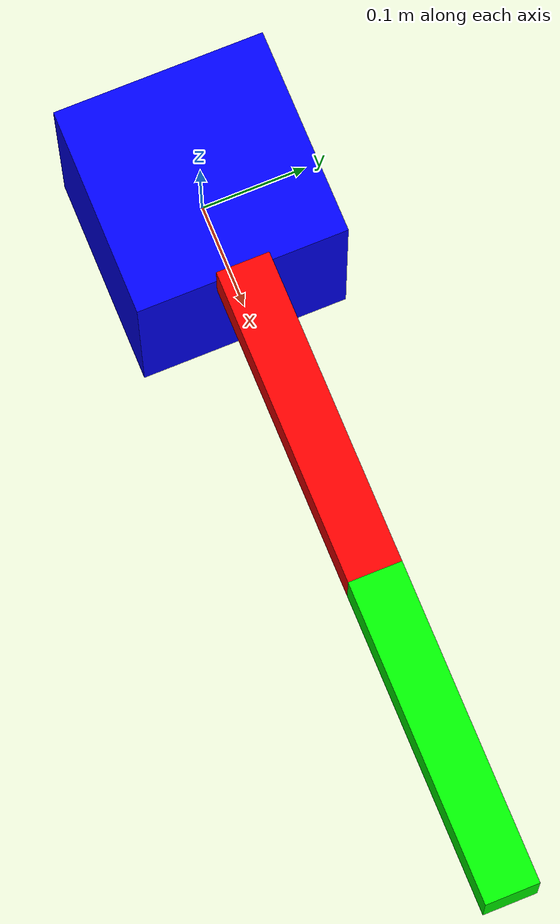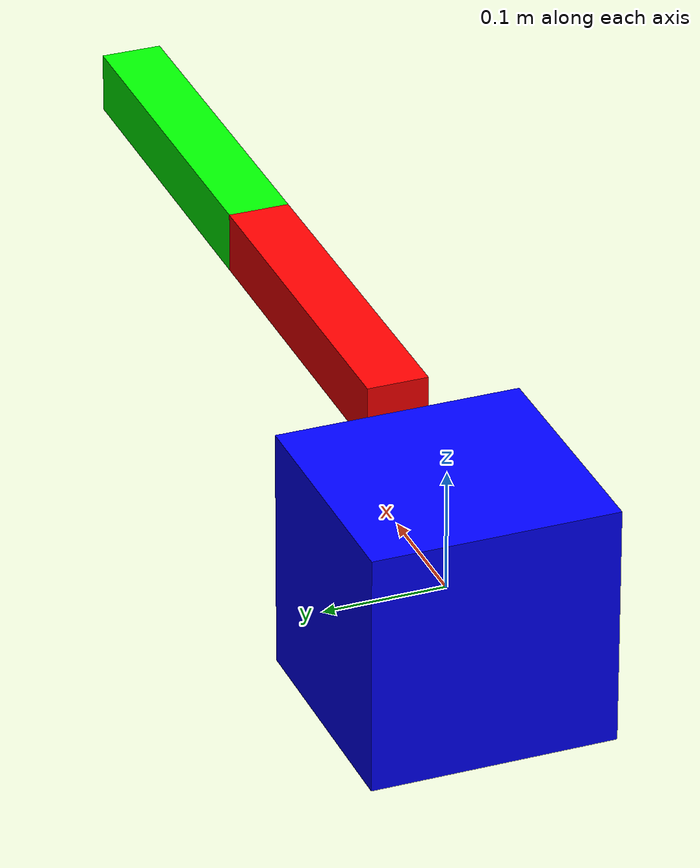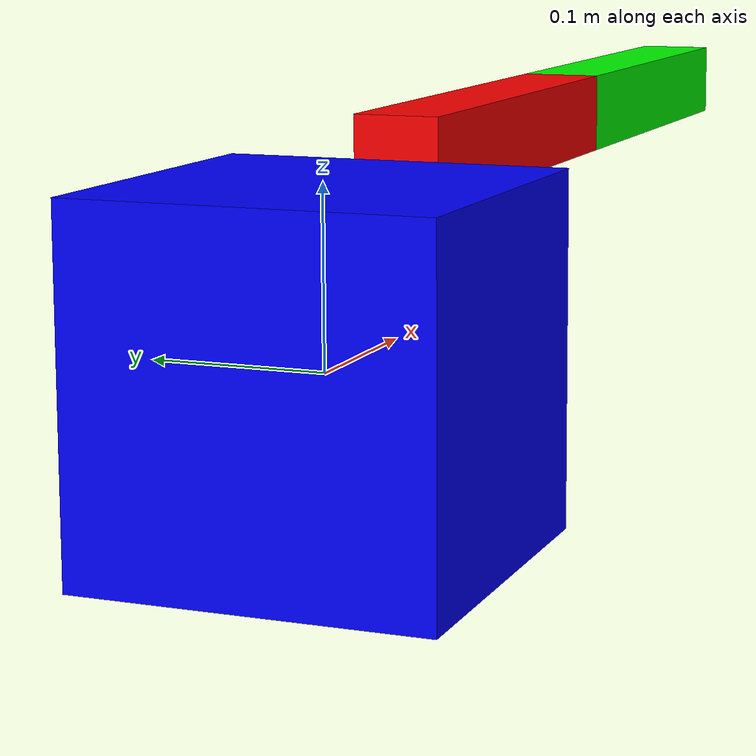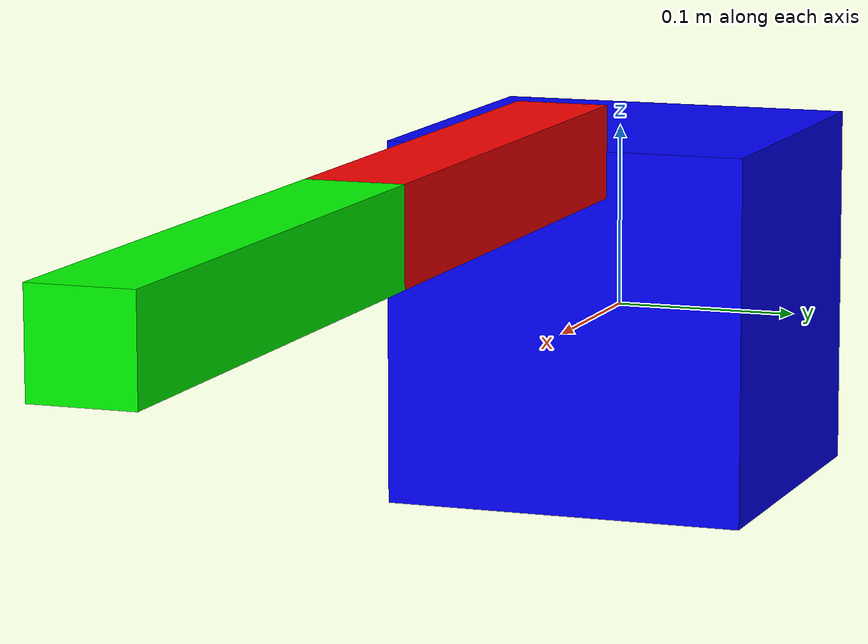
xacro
<?xml version="1.0"?>
<robot name="brachiograph_2dof">

  <!-- Base cúbica -->
  <link name="base_link">
    <visual>
      <geometry>
        <box size="0.2 0.2 0.2"/>
      </geometry>
      <material name="blue">
        <color rgba="0 0 1 1"/>
      </material>
    </visual>
    <collision>
      <geometry>
        <box size="0.2 0.2 0.2"/>
      </geometry>
    </collision>
    <inertial>
      <mass value="1.0"/>
      <inertia ixx="0.007" ixy="0" ixz="0" iyy="0.007" iyz="0" izz="0.007"/>
    </inertial>
  </link>

  <!-- Primer eslabón (prisma rectangular) -->
  <link name="link1">
    <visual>
      <origin xyz="0.15 0 0" rpy="0 0 0"/>
      <geometry>
        <box size="0.3 0.05 0.05"/>
      </geometry>
      <material name="red">
        <color rgba="1 0 0 1"/>
      </material>
    </visual>
    <collision>
      <origin xyz="0.15 0 0" rpy="0 0 0"/>
      <geometry>
        <box size="0.3 0.05 0.05"/>
      </geometry>
    </collision>
    <inertial>
      <origin xyz="0.15 0 0" rpy="0 0 0"/>
      <mass value="0.5"/>
      <inertia ixx="0.001" ixy="0" ixz="0" iyy="0.004" iyz="0" izz="0.004"/>
    </inertial>
  </link>

  <!-- Junta revoluta: Base al primer eslabón -->
  <joint name="shoulder_joint" type="revolute">
    <parent link="base_link"/>
    <child link="link1"/>
    <origin xyz="0.1 0 0.1" rpy="0 0 0"/>
    <axis xyz="0 0 1"/>
    <limit effort="10" velocity="2" lower="-3.14159" upper="3.14159"/>
    <dynamics damping="0.1" friction="0.05"/>
  </joint>

  <!-- Segundo eslabón (prisma rectangular, misma longitud) -->
  <link name="link2">
    <visual>
      <origin xyz="0.15 0 0" rpy="0 0 0"/>
      <geometry>
        <box size="0.3 0.05 0.05"/>
      </geometry>
      <material name="green">
        <color rgba="0 1 0 1"/>
      </material>
    </visual>
    <collision>
      <origin xyz="0.15 0 0" rpy="0 0 0"/>
      <geometry>
        <box size="0.3 0.05 0.05"/>
      </geometry>
    </collision>
    <inertial>
      <origin xyz="0.15 0 0" rpy="0 0 0"/>
      <mass value="0.5"/>
      <inertia ixx="0.001" ixy="0" ixz="0" iyy="0.004" iyz="0" izz="0.004"/>
    </inertial>
  </link>

  <!-- Junta revoluta: Primer eslabón al segundo eslabón -->
  <joint name="elbow_joint" type="revolute">
    <parent link="link1"/>
    <child link="link2"/>
    <origin xyz="0.3 0 0" rpy="0 0 0"/>
    <axis xyz="0 0 1"/>
    <limit effort="10" velocity="2" lower="-3.14159" upper="3.14159"/>
    <dynamics damping="0.1" friction="0.05"/>
  </joint>

</robot>
